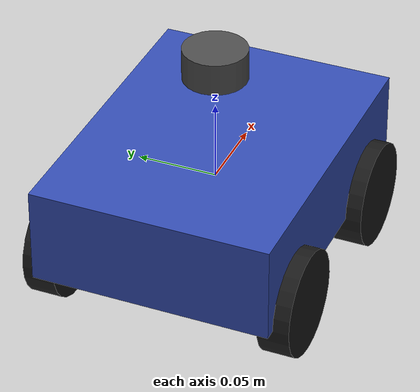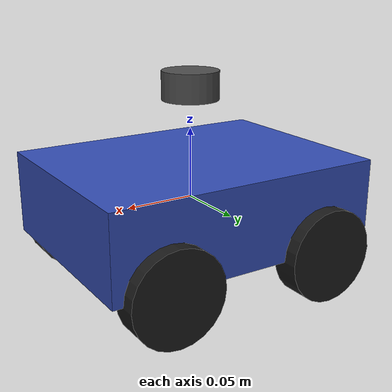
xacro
<?xml version="1.0"?>
<robot name="minicar" xmlns:xacro="http://www.ros.org/wiki/xacro">

  <xacro:arg name="namespace" default="bot1"/>
  <xacro:property name="ns" value="$(arg namespace)"/>
  <xacro:property name="pi" value="3.14159265359"/>

  <!-- provisional geometry (m) — TODO(Phase 1 実測) -->
  <xacro:property name="body_length" value="0.20"/>
  <xacro:property name="body_width" value="0.15"/>
  <xacro:property name="body_height" value="0.06"/>
  <xacro:property name="body_mass" value="0.6"/>
  <xacro:property name="wheel_radius" value="0.033"/>
  <xacro:property name="wheel_width" value="0.02"/>
  <xacro:property name="wheel_mass" value="0.05"/>
  <xacro:property name="wheel_separation" value="0.15"/>
  <xacro:property name="wheel_base" value="0.12"/>
  <xacro:property name="lidar_mount_z" value="0.05"/>

  <material name="body_blue"><color rgba="0.2 0.3 0.7 1"/></material>
  <material name="wheel_black"><color rgba="0.1 0.1 0.1 1"/></material>
  <material name="sensor_grey"><color rgba="0.3 0.3 0.3 1"/></material>

  <!-- ── base_link (body root; doc09 TF root under odom) ── -->
  <link name="base_link">
    <visual>
      <geometry><box size="${body_length} ${body_width} ${body_height}"/></geometry>
      <material name="body_blue"/>
    </visual>
    <collision>
      <geometry><box size="${body_length} ${body_width} ${body_height}"/></geometry>
    </collision>
    <inertial>
      <mass value="${body_mass}"/>
      <inertia ixx="0.0012" ixy="0" ixz="0" iyy="0.0018" iyz="0" izz="0.0024"/>
    </inertial>
  </link>

  <!-- ── 4 skid-steer wheels (continuous, spin about body +Y) ── -->
  <xacro:macro name="wheel" params="name x y">
    <link name="${name}">
      <visual>
        <origin rpy="${pi/2} 0 0" xyz="0 0 0"/>
        <geometry><cylinder length="${wheel_width}" radius="${wheel_radius}"/></geometry>
        <material name="wheel_black"/>
      </visual>
      <collision>
        <origin rpy="${pi/2} 0 0" xyz="0 0 0"/>
        <geometry><cylinder length="${wheel_width}" radius="${wheel_radius}"/></geometry>
      </collision>
      <inertial>
        <mass value="${wheel_mass}"/>
        <inertia ixx="2e-5" ixy="0" ixz="0" iyy="2e-5" iyz="0" izz="3e-5"/>
      </inertial>
    </link>
    <joint name="${name}_joint" type="continuous">
      <parent link="base_link"/>
      <child link="${name}"/>
      <origin rpy="0 0 0" xyz="${x} ${y} ${-body_height/2}"/>
      <axis xyz="0 1 0"/>
    </joint>
    <gazebo reference="${name}"><material>Gazebo/Black</material></gazebo>
  </xacro:macro>

  <xacro:wheel name="wheel_front_left"  x="${wheel_base/2}"  y="${wheel_separation/2}"/>
  <xacro:wheel name="wheel_front_right" x="${wheel_base/2}"  y="${-wheel_separation/2}"/>
  <xacro:wheel name="wheel_rear_left"   x="${-wheel_base/2}" y="${wheel_separation/2}"/>
  <xacro:wheel name="wheel_rear_right"  x="${-wheel_base/2}" y="${-wheel_separation/2}"/>

  <!-- ── lidar_link (ORBBEC MS200 mount) ── -->
  <link name="lidar_link">
    <visual>
      <geometry><cylinder length="0.02" radius="0.02"/></geometry>
      <material name="sensor_grey"/>
    </visual>
    <inertial>
      <mass value="0.05"/>
      <inertia ixx="1e-5" ixy="0" ixz="0" iyy="1e-5" iyz="0" izz="1e-5"/>
    </inertial>
  </link>
  <joint name="lidar_joint" type="fixed">
    <parent link="base_link"/>
    <child link="lidar_link"/>
    <origin rpy="0 0 0" xyz="0 0 ${body_height/2 + lidar_mount_z}"/>
  </joint>

  <!-- ── imu_link (doc09 TF tree) ── -->
  <link name="imu_link">
    <inertial>
      <mass value="0.01"/>
      <inertia ixx="1e-6" ixy="0" ixz="0" iyy="1e-6" iyz="0" izz="1e-6"/>
    </inertial>
  </link>
  <joint name="imu_joint" type="fixed">
    <parent link="base_link"/>
    <child link="imu_link"/>
    <origin rpy="0 0 0" xyz="0 0 0"/>
  </joint>

  <!-- ── Gazebo (gz-sim8) sensors + drive ── -->
  <gazebo reference="lidar_link">
    <sensor name="lidar" type="gpu_lidar">
      <topic>/${ns}/scan</topic>
      <gz_frame_id>${ns}/lidar_link</gz_frame_id>
      <update_rate>10</update_rate>
      <always_on>1</always_on>
      <lidar>
        <scan>
          <horizontal>
            <!-- 360 samples / 1deg: downsample of MS200 0.4deg/900pts (R-43). TODO(R-43) -->
            <samples>360</samples>
            <resolution>1</resolution>
            <min_angle>-${pi}</min_angle>
            <max_angle>${pi}</max_angle>
          </horizontal>
          <vertical><samples>1</samples><resolution>1</resolution>
            <min_angle>0</min_angle><max_angle>0</max_angle></vertical>
        </scan>
        <range><min>0.08</min><max>12.0</max><resolution>0.01</resolution></range>
      </lidar>
    </sensor>
  </gazebo>

  <gazebo reference="imu_link">
    <sensor name="imu" type="imu">
      <topic>/${ns}/imu</topic>
      <gz_frame_id>${ns}/imu_link</gz_frame_id>
      <update_rate>50</update_rate>
      <always_on>1</always_on>
    </sensor>
  </gazebo>

  <gazebo reference="base_link"><material>Gazebo/Blue</material></gazebo>

  <gazebo>
    <plugin filename="gz-sim-diff-drive-system" name="gz::sim::systems::DiffDrive">
      <!-- skid-steer: two left joints + two right joints -->
      <left_joint>wheel_front_left_joint</left_joint>
      <left_joint>wheel_rear_left_joint</left_joint>
      <right_joint>wheel_front_right_joint</right_joint>
      <right_joint>wheel_rear_right_joint</right_joint>
      <wheel_separation>${wheel_separation}</wheel_separation>
      <wheel_radius>${wheel_radius}</wheel_radius>
      <topic>/${ns}/cmd_vel</topic>
      <odom_topic>/${ns}/odom</odom_topic>
      <frame_id>${ns}/odom</frame_id>
      <child_frame_id>${ns}/base_link</child_frame_id>
      <odom_publish_frequency>30</odom_publish_frequency>
    </plugin>
  </gazebo>

</robot>
